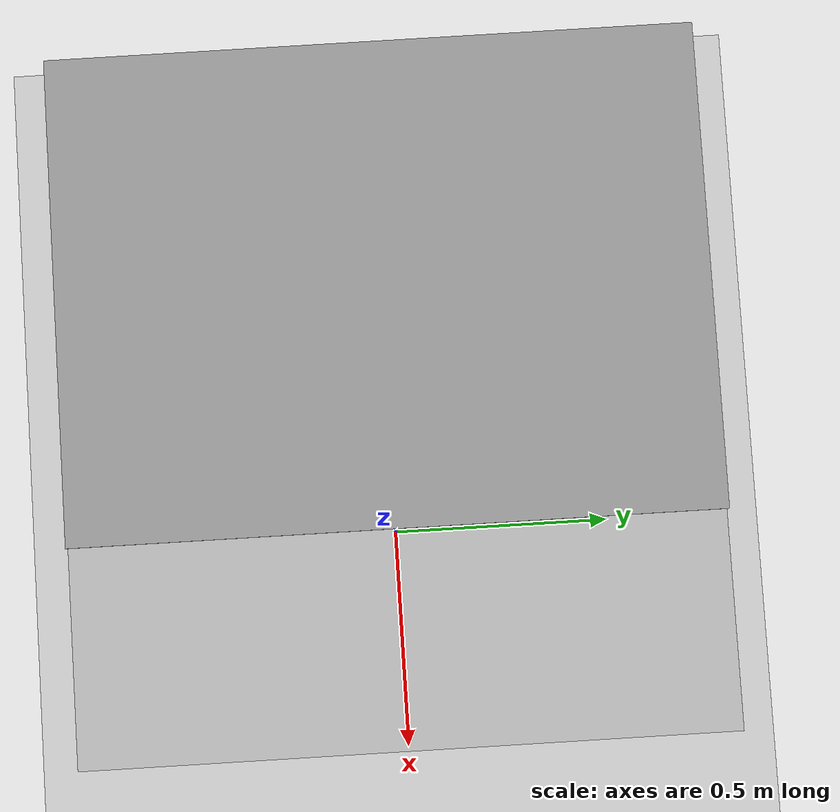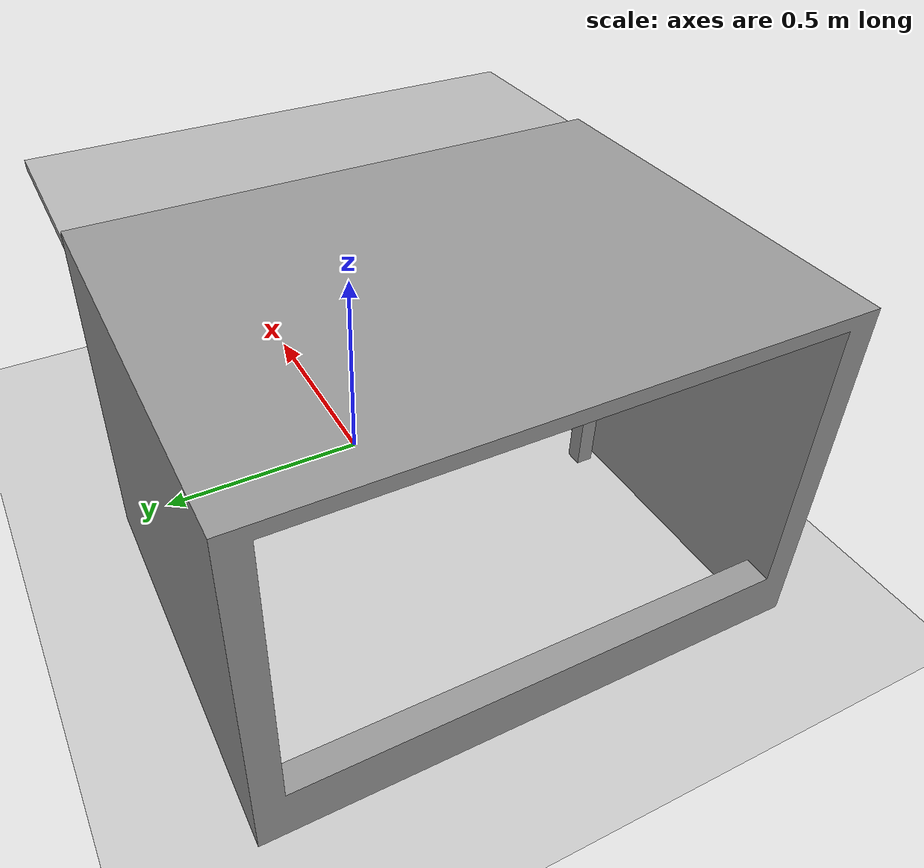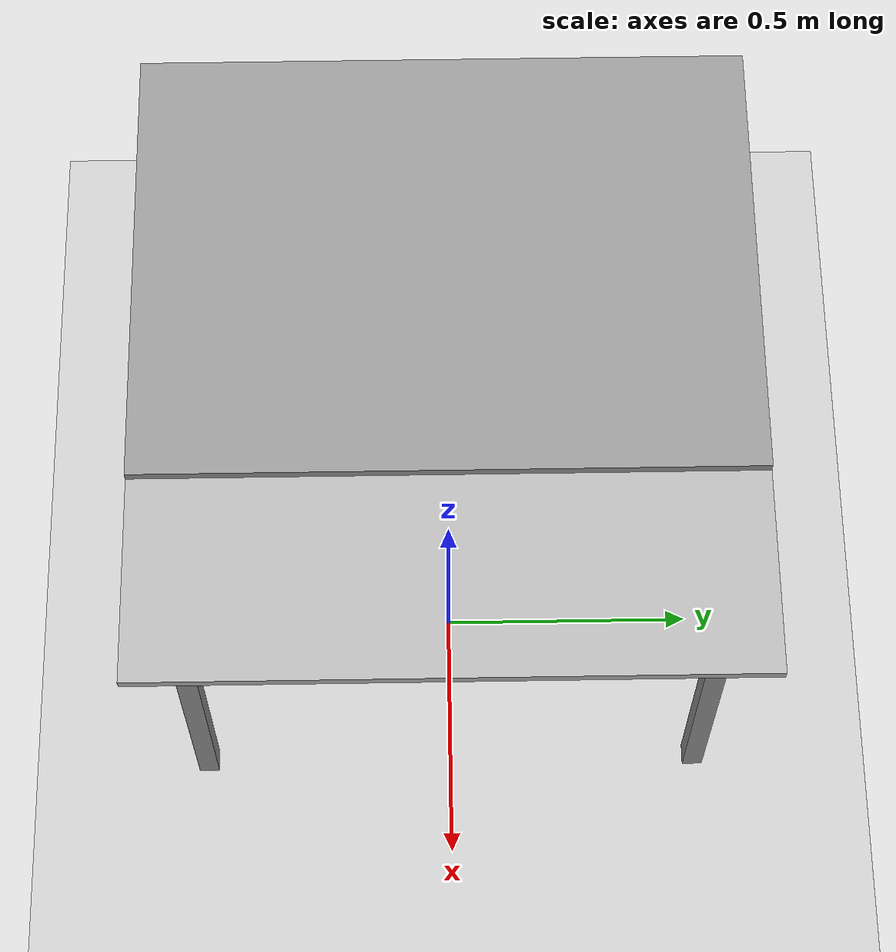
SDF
<?xml version="1.0" ?>

<sdf version="1.6">

  <world name="ur3e_dual">

    <gui fullscreen='0'>
      <camera name='user_camera'>
        <pose frame=''>-1.963 -0.709243 1.66125 0 0.382 0.276808</pose>
        <view_controller>orbit</view_controller>
        <projection_type>perspective</projection_type>
      </camera>
    </gui>

    <gravity>0 0 -9.81</gravity>

    <physics name="default_physics" default="0" type="ode">
      <max_step_size>0.001</max_step_size>
      <real_time_factor>1</real_time_factor>
      <real_time_update_rate>1000</real_time_update_rate>
    </physics>

    <scene>
      <ambient>0.6 0.6 0.6 1</ambient>
      <background>0.9 0.9 0.95 1</background>
      <shadows>1</shadows>
    </scene>

    <!-- Light Source -->
    <include>
      <uri>model://sun</uri>
    </include>

    <!-- A ground plane -->
    <include>
      <uri>model://floor</uri>
      <pose>0 0 0 0 0 0</pose>
    </include>

    <!-- The robot base -->
    <model name="ur3e_base">
      <include>
        <uri>model://ur3e_base</uri>
        <pose>0 0 0 0 0 0</pose>
      </include>
    </model>

    <model name="ur3e_table">
      <include>
        <uri>model://ur3e_table</uri>
        <pose>0 0 0 0 0 0</pose>
      </include>
    </model>

   </world>

</sdf>

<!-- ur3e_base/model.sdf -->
<sdf version="1.6">
  <model name="ur_base">
    <static>true</static>

    <link name="top_plate">
      <pose>0 0 0.75 0 0 0</pose>
      <collision name="top_plate_collision">
        <geometry>
          <box>
            <size>0.8 1.2 0.02</size>
          </box>
        </geometry>
        <surface>
          <contact>
            <collide_bitmask>0x01</collide_bitmask>
          </contact>
        </surface>
      </collision>
      <visual name="top_plate_visual">
        <geometry>
          <box>
            <size>0.8 1.2 0.02</size>
          </box>
        </geometry>
        <material>
          <script>
            <uri>file://ur3e_base/materials/scripts/repeated.material</uri>
            <name>RepeatedTexture</name>
          </script>
        </material>
      </visual>
    </link>
    <link name="leg1">
      <pose>0.3 0.5 0.375 0 0 0</pose>
      <visual name="leg1_visual">
        <geometry>
          <box>
            <size>0.04 0.04 0.75</size>
          </box>
        </geometry>
        <material>
          <script>
            <uri>file://media/materials/scripts/gazebo.material</uri>
            <name>Gazebo/Grey</name>
          </script>
        </material>
      </visual>
    </link>
    <link name="leg2">
      <pose>-0.3 0.5 0.375 0 0 0</pose>
      <visual name="leg2_visual">
        <geometry>
          <box>
            <size>0.04 0.04 0.75</size>
          </box>
        </geometry>
        <material>
          <script>
            <uri>file://media/materials/scripts/gazebo.material</uri>
            <name>Gazebo/Grey</name>
          </script>
        </material>
      </visual>
    </link>
    <link name="leg3">
      <pose>0.3 -0.5 0.375 0 0 0</pose>
      <visual name="leg3_visual">
        <geometry>
          <box>
            <size>0.04 0.04 0.75</size>
          </box>
        </geometry>
        <material>
          <script>
            <uri>file://media/materials/scripts/gazebo.material</uri>
            <name>Gazebo/Grey</name>
          </script>
        </material>
      </visual>
    </link>
    <link name="leg4">
      <pose>-0.3 -0.5 0.375 0 0 0</pose>
      <visual name="leg4_visual">
        <geometry>
          <box>
            <size>0.04 0.04 0.75</size>
          </box>
        </geometry>
        <material>
          <script>
            <uri>file://media/materials/scripts/gazebo.material</uri>
            <name>Gazebo/Grey</name>
          </script>
        </material>
      </visual>
    </link>
  </model>
</sdf>

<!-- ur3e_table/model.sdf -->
<sdf version='1.6'>
  <model name='ur3e_table'>
    <link name='table'>
      <pose frame=''>0 0 0 0 0 3.1415</pose>
      <gravity>1</gravity>
      <inertial>
        <mass>50</mass>
        <inertia>
          <ixx>1</ixx>
          <ixy>0</ixy>
          <ixz>0</ixz>
          <iyy>1</iyy>
          <iyz>0</iyz>
          <izz>1</izz>
        </inertia>
      </inertial>
      <visual name='table_visual'>
        <geometry>
          <mesh>
            <uri>model://ur3e_table/meshes/ur3e_table.stl</uri>
            <scale>1 1 1</scale>
          </mesh>
        </geometry>
        <material>
          <script>
            <name>Gazebo/Grey</name>
            <uri>__default__</uri>
          </script>
        </material>
        <pose frame=''>0 0 0 0 -0 0</pose>
        <transparency>0</transparency>
        <cast_shadows>1</cast_shadows>
      </visual>
      <collision name='table_collision'>
        <laser_retro>0</laser_retro>
        <max_contacts>10</max_contacts>
        <pose frame=''>0 0 0 0 0 0</pose>
        <geometry>
          <mesh>
            <uri>model://ur3e_table/meshes/ur3e_table.stl</uri>
            <scale>1 1 1</scale>
          </mesh>
        </geometry>
        <surface>
          <friction>
            <ode>
              <mu>1</mu>
              <mu2>1</mu2>
              <fdir1>0 0 0</fdir1>
              <slip1>0.1</slip1>
              <slip2>0.1</slip2>
            </ode>
            <torsional>
              <coefficient>1</coefficient>
              <patch_radius>0</patch_radius>
              <surface_radius>0</surface_radius>
              <use_patch_radius>1</use_patch_radius>
              <ode>
                <slip>0</slip>
              </ode>
            </torsional>
          </friction>
          <bounce>
            <restitution_coefficient>0</restitution_coefficient>
            <threshold>1e+06</threshold>
          </bounce>
          <contact>
            <collide_without_contact>0</collide_without_contact>
            <collide_without_contact_bitmask>1</collide_without_contact_bitmask>
            <collide_bitmask>1</collide_bitmask>
            <ode>
              <soft_cfm>0</soft_cfm>
              <soft_erp>0.2</soft_erp>
              <kp>1e+13</kp>
              <kd>1</kd>
              <max_vel>0.01</max_vel>
              <min_depth>0</min_depth>
            </ode>
            <bullet>
              <split_impulse>1</split_impulse>
              <split_impulse_penetration_threshold>-0.01</split_impulse_penetration_threshold>
              <soft_cfm>0</soft_cfm>
              <soft_erp>0.2</soft_erp>
              <kp>1e+13</kp>
              <kd>1</kd>
            </bullet>
          </contact>
        </surface>
      </collision>
    </link>
    <static>1</static>
    <allow_auto_disable>1</allow_auto_disable>
  </model>
</sdf>

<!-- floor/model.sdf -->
<sdf version="1.5">
  <model name="floor">
    <static>true</static>
    <link name="link">
      <collision name="collision">
        <geometry>
          <plane>
            <normal>0 0 1</normal>
            <size>10 10</size>
          </plane>
        </geometry>
        <surface>
          <contact>
             <collide_bitmask>0xffff</collide_bitmask>
          </contact>
          <friction>
            <ode>
              <mu>100</mu>
              <mu2>50</mu2>
            </ode>
          </friction>
        </surface>
      </collision>
      <visual name="visual">
        <cast_shadows>false</cast_shadows>
        <geometry>
          <plane>
            <normal>0 0 1</normal>
            <size>100 100</size>
          </plane>
        </geometry>
        <material>
          <script>
            <uri>file://floor/materials/scripts/checkboard.material</uri>
            <name>CheckerTexture</name>
          </script>
        </material>
      </visual>
    </link>
  </model>
</sdf>
